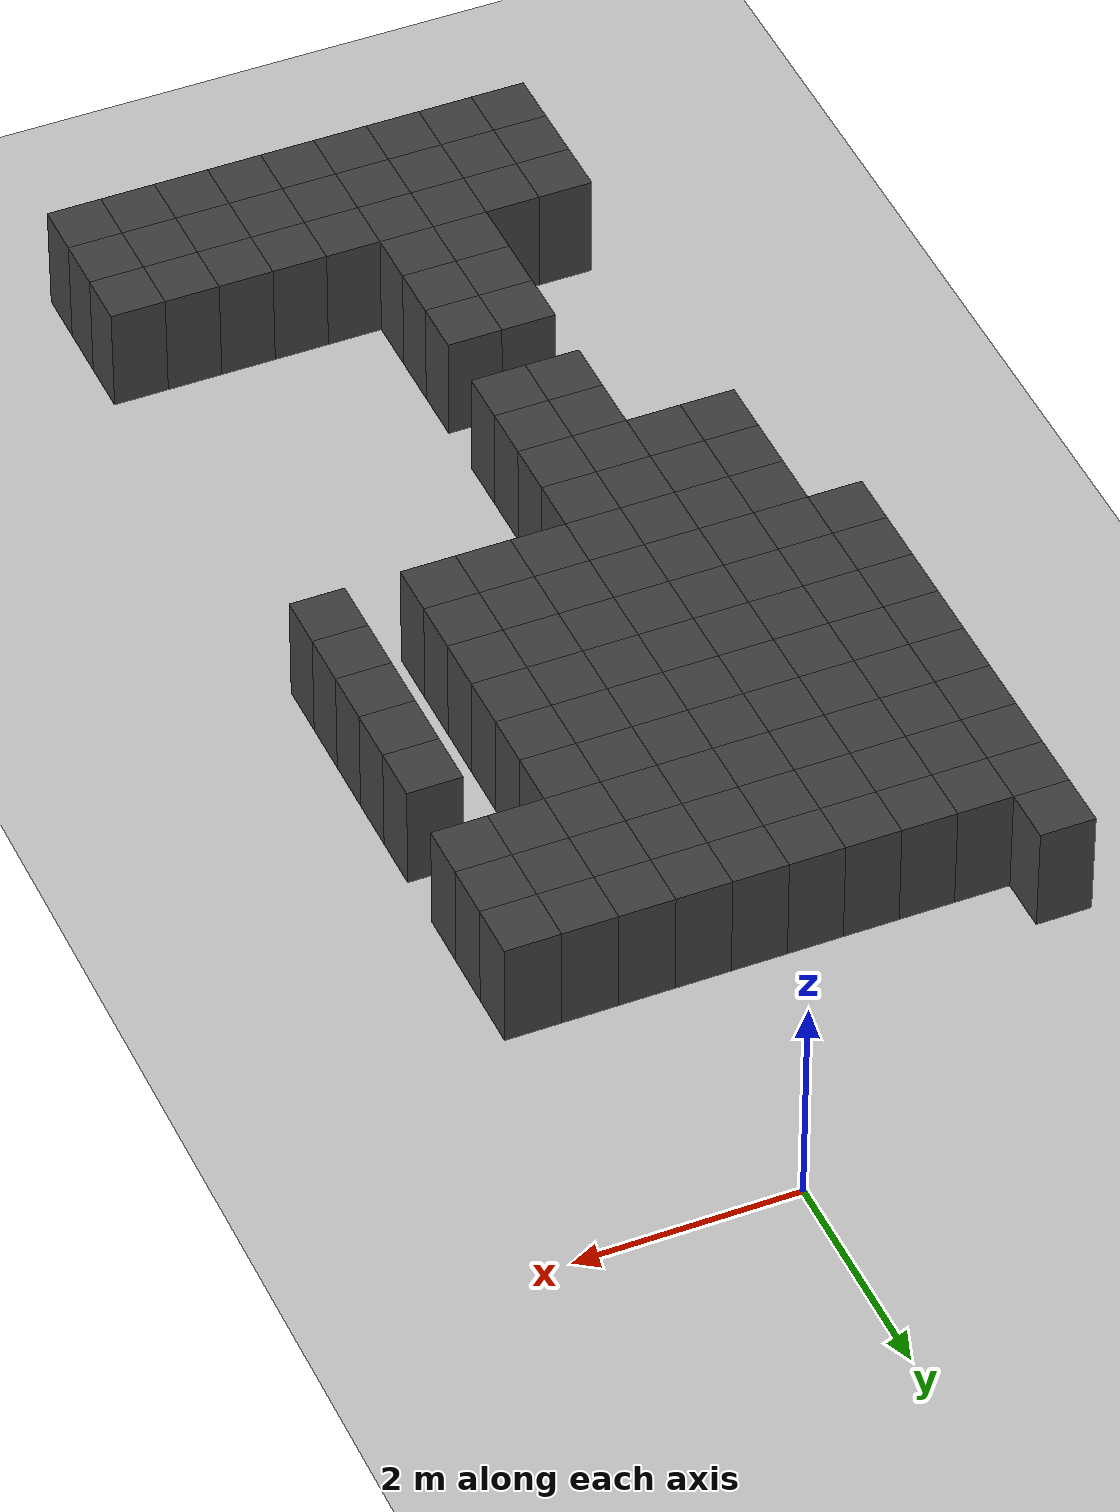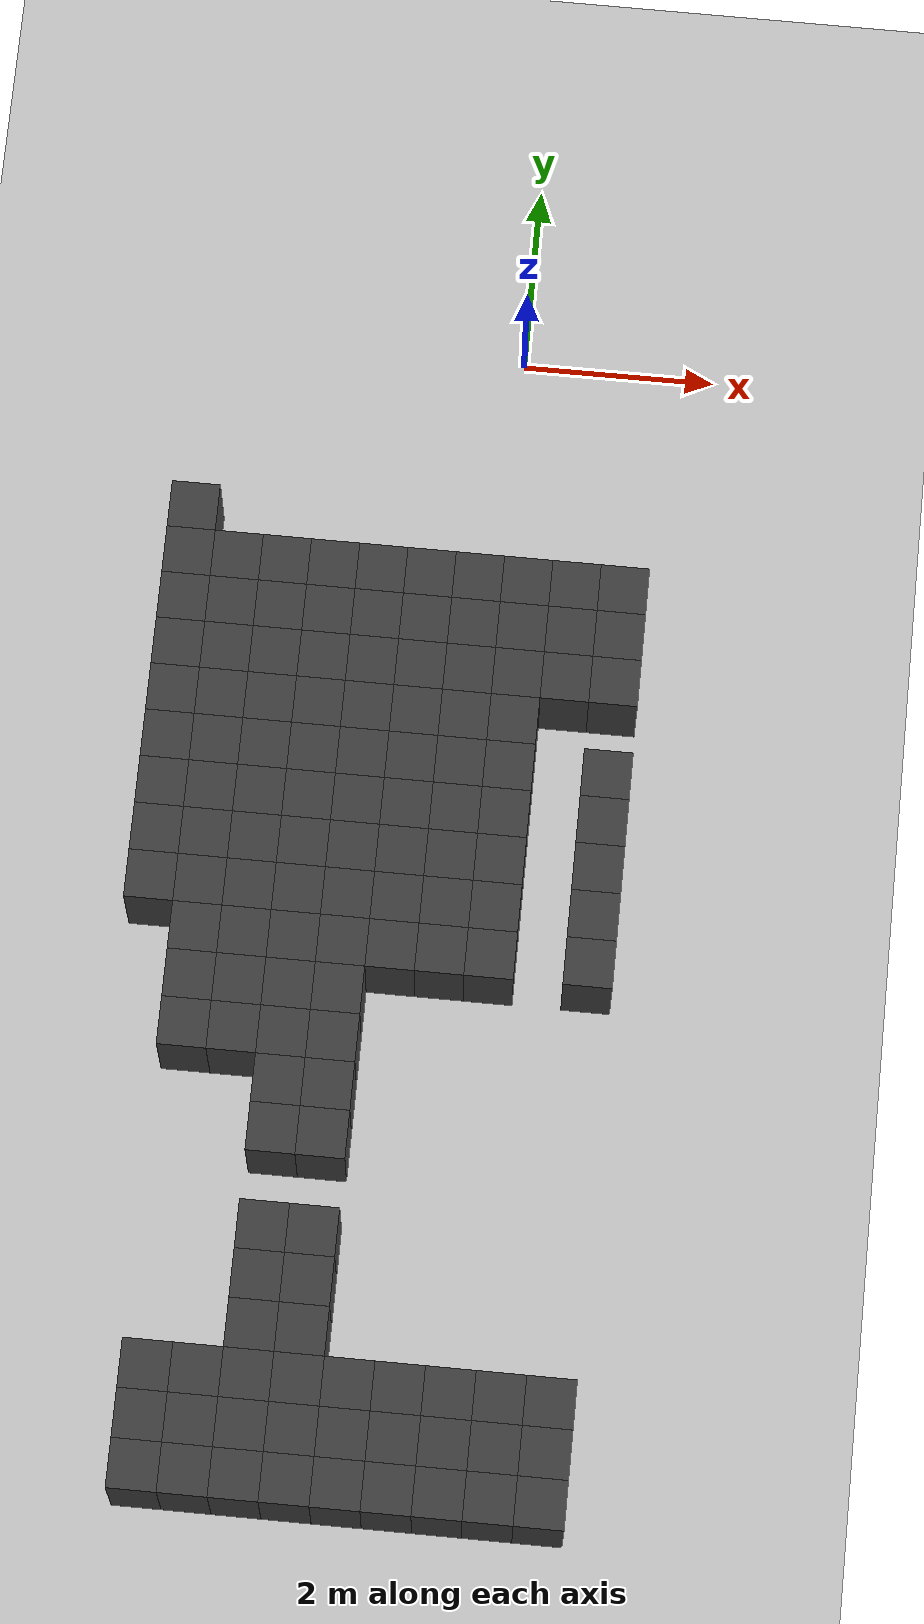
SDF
<sdf version="1.7">
 <world name="map_14494">
  <model name="ground_plane">
   <static>true</static>
   <link name="link">
    <collision name="collision">
     <geometry><plane><normal>0 0 1</normal><size>200 200</size></plane></geometry>
    </collision>
    <visual name="visual">
     <geometry><plane><normal>0 0 1</normal><size>200 200</size></plane></geometry>
     <material><ambient>0.8 0.8 0.8 1</ambient><diffuse>0.8 0.8 0.8 1</diffuse></material>
    </visual>
   </link>
  </model>
  <model name="maze_environment">
   <static>true</static>
   <link name="wall_1061">
    <pose>-3.250 -2.250 0.500 0 0 0</pose>
    <collision name="col"><geometry><box><size>0.5 0.5 1.0</size></box></geometry></collision>
    <visual name="vis">
     <geometry><box><size>0.5 0.5 1.0</size></box></geometry>
     <material><ambient>0.15 0.15 0.15 1</ambient><diffuse>0.25 0.25 0.25 1</diffuse></material>
    </visual>
   </link>
   <link name="wall_1089">
    <pose>-3.250 -2.750 0.500 0 0 0</pose>
    <collision name="col"><geometry><box><size>0.5 0.5 1.0</size></box></geometry></collision>
    <visual name="vis">
     <geometry><box><size>0.5 0.5 1.0</size></box></geometry>
     <material><ambient>0.15 0.15 0.15 1</ambient><diffuse>0.25 0.25 0.25 1</diffuse></material>
    </visual>
   </link>
   <link name="wall_1090">
    <pose>-2.750 -2.750 0.500 0 0 0</pose>
    <collision name="col"><geometry><box><size>0.5 0.5 1.0</size></box></geometry></collision>
    <visual name="vis">
     <geometry><box><size>0.5 0.5 1.0</size></box></geometry>
     <material><ambient>0.15 0.15 0.15 1</ambient><diffuse>0.25 0.25 0.25 1</diffuse></material>
    </visual>
   </link>
   <link name="wall_1091">
    <pose>-2.250 -2.750 0.500 0 0 0</pose>
    <collision name="col"><geometry><box><size>0.5 0.5 1.0</size></box></geometry></collision>
    <visual name="vis">
     <geometry><box><size>0.5 0.5 1.0</size></box></geometry>
     <material><ambient>0.15 0.15 0.15 1</ambient><diffuse>0.25 0.25 0.25 1</diffuse></material>
    </visual>
   </link>
   <link name="wall_1092">
    <pose>-1.750 -2.750 0.500 0 0 0</pose>
    <collision name="col"><geometry><box><size>0.5 0.5 1.0</size></box></geometry></collision>
    <visual name="vis">
     <geometry><box><size>0.5 0.5 1.0</size></box></geometry>
     <material><ambient>0.15 0.15 0.15 1</ambient><diffuse>0.25 0.25 0.25 1</diffuse></material>
    </visual>
   </link>
   <link name="wall_1093">
    <pose>-1.250 -2.750 0.500 0 0 0</pose>
    <collision name="col"><geometry><box><size>0.5 0.5 1.0</size></box></geometry></collision>
    <visual name="vis">
     <geometry><box><size>0.5 0.5 1.0</size></box></geometry>
     <material><ambient>0.15 0.15 0.15 1</ambient><diffuse>0.25 0.25 0.25 1</diffuse></material>
    </visual>
   </link>
   <link name="wall_1094">
    <pose>-0.750 -2.750 0.500 0 0 0</pose>
    <collision name="col"><geometry><box><size>0.5 0.5 1.0</size></box></geometry></collision>
    <visual name="vis">
     <geometry><box><size>0.5 0.5 1.0</size></box></geometry>
     <material><ambient>0.15 0.15 0.15 1</ambient><diffuse>0.25 0.25 0.25 1</diffuse></material>
    </visual>
   </link>
   <link name="wall_1095">
    <pose>-0.250 -2.750 0.500 0 0 0</pose>
    <collision name="col"><geometry><box><size>0.5 0.5 1.0</size></box></geometry></collision>
    <visual name="vis">
     <geometry><box><size>0.5 0.5 1.0</size></box></geometry>
     <material><ambient>0.15 0.15 0.15 1</ambient><diffuse>0.25 0.25 0.25 1</diffuse></material>
    </visual>
   </link>
   <link name="wall_1096">
    <pose>0.250 -2.750 0.500 0 0 0</pose>
    <collision name="col"><geometry><box><size>0.5 0.5 1.0</size></box></geometry></collision>
    <visual name="vis">
     <geometry><box><size>0.5 0.5 1.0</size></box></geometry>
     <material><ambient>0.15 0.15 0.15 1</ambient><diffuse>0.25 0.25 0.25 1</diffuse></material>
    </visual>
   </link>
   <link name="wall_1097">
    <pose>0.750 -2.750 0.500 0 0 0</pose>
    <collision name="col"><geometry><box><size>0.5 0.5 1.0</size></box></geometry></collision>
    <visual name="vis">
     <geometry><box><size>0.5 0.5 1.0</size></box></geometry>
     <material><ambient>0.15 0.15 0.15 1</ambient><diffuse>0.25 0.25 0.25 1</diffuse></material>
    </visual>
   </link>
   <link name="wall_1098">
    <pose>1.250 -2.750 0.500 0 0 0</pose>
    <collision name="col"><geometry><box><size>0.5 0.5 1.0</size></box></geometry></collision>
    <visual name="vis">
     <geometry><box><size>0.5 0.5 1.0</size></box></geometry>
     <material><ambient>0.15 0.15 0.15 1</ambient><diffuse>0.25 0.25 0.25 1</diffuse></material>
    </visual>
   </link>
   <link name="wall_1115">
    <pose>-3.250 -3.250 0.500 0 0 0</pose>
    <collision name="col"><geometry><box><size>0.5 0.5 1.0</size></box></geometry></collision>
    <visual name="vis">
     <geometry><box><size>0.5 0.5 1.0</size></box></geometry>
     <material><ambient>0.15 0.15 0.15 1</ambient><diffuse>0.25 0.25 0.25 1</diffuse></material>
    </visual>
   </link>
   <link name="wall_1116">
    <pose>-2.750 -3.250 0.500 0 0 0</pose>
    <collision name="col"><geometry><box><size>0.5 0.5 1.0</size></box></geometry></collision>
    <visual name="vis">
     <geometry><box><size>0.5 0.5 1.0</size></box></geometry>
     <material><ambient>0.15 0.15 0.15 1</ambient><diffuse>0.25 0.25 0.25 1</diffuse></material>
    </visual>
   </link>
   <link name="wall_1117">
    <pose>-2.250 -3.250 0.500 0 0 0</pose>
    <collision name="col"><geometry><box><size>0.5 0.5 1.0</size></box></geometry></collision>
    <visual name="vis">
     <geometry><box><size>0.5 0.5 1.0</size></box></geometry>
     <material><ambient>0.15 0.15 0.15 1</ambient><diffuse>0.25 0.25 0.25 1</diffuse></material>
    </visual>
   </link>
   <link name="wall_1118">
    <pose>-1.750 -3.250 0.500 0 0 0</pose>
    <collision name="col"><geometry><box><size>0.5 0.5 1.0</size></box></geometry></collision>
    <visual name="vis">
     <geometry><box><size>0.5 0.5 1.0</size></box></geometry>
     <material><ambient>0.15 0.15 0.15 1</ambient><diffuse>0.25 0.25 0.25 1</diffuse></material>
    </visual>
   </link>
   <link name="wall_1119">
    <pose>-1.250 -3.250 0.500 0 0 0</pose>
    <collision name="col"><geometry><box><size>0.5 0.5 1.0</size></box></geometry></collision>
    <visual name="vis">
     <geometry><box><size>0.5 0.5 1.0</size></box></geometry>
     <material><ambient>0.15 0.15 0.15 1</ambient><diffuse>0.25 0.25 0.25 1</diffuse></material>
    </visual>
   </link>
   <link name="wall_1120">
    <pose>-0.750 -3.250 0.500 0 0 0</pose>
    <collision name="col"><geometry><box><size>0.5 0.5 1.0</size></box></geometry></collision>
    <visual name="vis">
     <geometry><box><size>0.5 0.5 1.0</size></box></geometry>
     <material><ambient>0.15 0.15 0.15 1</ambient><diffuse>0.25 0.25 0.25 1</diffuse></material>
    </visual>
   </link>
   <link name="wall_1121">
    <pose>-0.250 -3.250 0.500 0 0 0</pose>
    <collision name="col"><geometry><box><size>0.5 0.5 1.0</size></box></geometry></collision>
    <visual name="vis">
     <geometry><box><size>0.5 0.5 1.0</size></box></geometry>
     <material><ambient>0.15 0.15 0.15 1</ambient><diffuse>0.25 0.25 0.25 1</diffuse></material>
    </visual>
   </link>
   <link name="wall_1122">
    <pose>0.250 -3.250 0.500 0 0 0</pose>
    <collision name="col"><geometry><box><size>0.5 0.5 1.0</size></box></geometry></collision>
    <visual name="vis">
     <geometry><box><size>0.5 0.5 1.0</size></box></geometry>
     <material><ambient>0.15 0.15 0.15 1</ambient><diffuse>0.25 0.25 0.25 1</diffuse></material>
    </visual>
   </link>
   <link name="wall_1123">
    <pose>0.750 -3.250 0.500 0 0 0</pose>
    <collision name="col"><geometry><box><size>0.5 0.5 1.0</size></box></geometry></collision>
    <visual name="vis">
     <geometry><box><size>0.5 0.5 1.0</size></box></geometry>
     <material><ambient>0.15 0.15 0.15 1</ambient><diffuse>0.25 0.25 0.25 1</diffuse></material>
    </visual>
   </link>
   <link name="wall_1124">
    <pose>1.250 -3.250 0.500 0 0 0</pose>
    <collision name="col"><geometry><box><size>0.5 0.5 1.0</size></box></geometry></collision>
    <visual name="vis">
     <geometry><box><size>0.5 0.5 1.0</size></box></geometry>
     <material><ambient>0.15 0.15 0.15 1</ambient><diffuse>0.25 0.25 0.25 1</diffuse></material>
    </visual>
   </link>
   <link name="wall_1142">
    <pose>-3.250 -3.750 0.500 0 0 0</pose>
    <collision name="col"><geometry><box><size>0.5 0.5 1.0</size></box></geometry></collision>
    <visual name="vis">
     <geometry><box><size>0.5 0.5 1.0</size></box></geometry>
     <material><ambient>0.15 0.15 0.15 1</ambient><diffuse>0.25 0.25 0.25 1</diffuse></material>
    </visual>
   </link>
   <link name="wall_1143">
    <pose>-2.750 -3.750 0.500 0 0 0</pose>
    <collision name="col"><geometry><box><size>0.5 0.5 1.0</size></box></geometry></collision>
    <visual name="vis">
     <geometry><box><size>0.5 0.5 1.0</size></box></geometry>
     <material><ambient>0.15 0.15 0.15 1</ambient><diffuse>0.25 0.25 0.25 1</diffuse></material>
    </visual>
   </link>
   <link name="wall_1144">
    <pose>-2.250 -3.750 0.500 0 0 0</pose>
    <collision name="col"><geometry><box><size>0.5 0.5 1.0</size></box></geometry></collision>
    <visual name="vis">
     <geometry><box><size>0.5 0.5 1.0</size></box></geometry>
     <material><ambient>0.15 0.15 0.15 1</ambient><diffuse>0.25 0.25 0.25 1</diffuse></material>
    </visual>
   </link>
   <link name="wall_1145">
    <pose>-1.750 -3.750 0.500 0 0 0</pose>
    <collision name="col"><geometry><box><size>0.5 0.5 1.0</size></box></geometry></collision>
    <visual name="vis">
     <geometry><box><size>0.5 0.5 1.0</size></box></geometry>
     <material><ambient>0.15 0.15 0.15 1</ambient><diffuse>0.25 0.25 0.25 1</diffuse></material>
    </visual>
   </link>
   <link name="wall_1146">
    <pose>-1.250 -3.750 0.500 0 0 0</pose>
    <collision name="col"><geometry><box><size>0.5 0.5 1.0</size></box></geometry></collision>
    <visual name="vis">
     <geometry><box><size>0.5 0.5 1.0</size></box></geometry>
     <material><ambient>0.15 0.15 0.15 1</ambient><diffuse>0.25 0.25 0.25 1</diffuse></material>
    </visual>
   </link>
   <link name="wall_1147">
    <pose>-0.750 -3.750 0.500 0 0 0</pose>
    <collision name="col"><geometry><box><size>0.5 0.5 1.0</size></box></geometry></collision>
    <visual name="vis">
     <geometry><box><size>0.5 0.5 1.0</size></box></geometry>
     <material><ambient>0.15 0.15 0.15 1</ambient><diffuse>0.25 0.25 0.25 1</diffuse></material>
    </visual>
   </link>
   <link name="wall_1148">
    <pose>-0.250 -3.750 0.500 0 0 0</pose>
    <collision name="col"><geometry><box><size>0.5 0.5 1.0</size></box></geometry></collision>
    <visual name="vis">
     <geometry><box><size>0.5 0.5 1.0</size></box></geometry>
     <material><ambient>0.15 0.15 0.15 1</ambient><diffuse>0.25 0.25 0.25 1</diffuse></material>
    </visual>
   </link>
   <link name="wall_1149">
    <pose>0.250 -3.750 0.500 0 0 0</pose>
    <collision name="col"><geometry><box><size>0.5 0.5 1.0</size></box></geometry></collision>
    <visual name="vis">
     <geometry><box><size>0.5 0.5 1.0</size></box></geometry>
     <material><ambient>0.15 0.15 0.15 1</ambient><diffuse>0.25 0.25 0.25 1</diffuse></material>
    </visual>
   </link>
   <link name="wall_1150">
    <pose>0.750 -3.750 0.500 0 0 0</pose>
    <collision name="col"><geometry><box><size>0.5 0.5 1.0</size></box></geometry></collision>
    <visual name="vis">
     <geometry><box><size>0.5 0.5 1.0</size></box></geometry>
     <material><ambient>0.15 0.15 0.15 1</ambient><diffuse>0.25 0.25 0.25 1</diffuse></material>
    </visual>
   </link>
   <link name="wall_1151">
    <pose>1.250 -3.750 0.500 0 0 0</pose>
    <collision name="col"><geometry><box><size>0.5 0.5 1.0</size></box></geometry></collision>
    <visual name="vis">
     <geometry><box><size>0.5 0.5 1.0</size></box></geometry>
     <material><ambient>0.15 0.15 0.15 1</ambient><diffuse>0.25 0.25 0.25 1</diffuse></material>
    </visual>
   </link>
   <link name="wall_1169">
    <pose>-3.250 -4.250 0.500 0 0 0</pose>
    <collision name="col"><geometry><box><size>0.5 0.5 1.0</size></box></geometry></collision>
    <visual name="vis">
     <geometry><box><size>0.5 0.5 1.0</size></box></geometry>
     <material><ambient>0.15 0.15 0.15 1</ambient><diffuse>0.25 0.25 0.25 1</diffuse></material>
    </visual>
   </link>
   <link name="wall_1170">
    <pose>-2.750 -4.250 0.500 0 0 0</pose>
    <collision name="col"><geometry><box><size>0.5 0.5 1.0</size></box></geometry></collision>
    <visual name="vis">
     <geometry><box><size>0.5 0.5 1.0</size></box></geometry>
     <material><ambient>0.15 0.15 0.15 1</ambient><diffuse>0.25 0.25 0.25 1</diffuse></material>
    </visual>
   </link>
   <link name="wall_1171">
    <pose>-2.250 -4.250 0.500 0 0 0</pose>
    <collision name="col"><geometry><box><size>0.5 0.5 1.0</size></box></geometry></collision>
    <visual name="vis">
     <geometry><box><size>0.5 0.5 1.0</size></box></geometry>
     <material><ambient>0.15 0.15 0.15 1</ambient><diffuse>0.25 0.25 0.25 1</diffuse></material>
    </visual>
   </link>
   <link name="wall_1172">
    <pose>-1.750 -4.250 0.500 0 0 0</pose>
    <collision name="col"><geometry><box><size>0.5 0.5 1.0</size></box></geometry></collision>
    <visual name="vis">
     <geometry><box><size>0.5 0.5 1.0</size></box></geometry>
     <material><ambient>0.15 0.15 0.15 1</ambient><diffuse>0.25 0.25 0.25 1</diffuse></material>
    </visual>
   </link>
   <link name="wall_1173">
    <pose>-1.250 -4.250 0.500 0 0 0</pose>
    <collision name="col"><geometry><box><size>0.5 0.5 1.0</size></box></geometry></collision>
    <visual name="vis">
     <geometry><box><size>0.5 0.5 1.0</size></box></geometry>
     <material><ambient>0.15 0.15 0.15 1</ambient><diffuse>0.25 0.25 0.25 1</diffuse></material>
    </visual>
   </link>
   <link name="wall_1174">
    <pose>-0.750 -4.250 0.500 0 0 0</pose>
    <collision name="col"><geometry><box><size>0.5 0.5 1.0</size></box></geometry></collision>
    <visual name="vis">
     <geometry><box><size>0.5 0.5 1.0</size></box></geometry>
     <material><ambient>0.15 0.15 0.15 1</ambient><diffuse>0.25 0.25 0.25 1</diffuse></material>
    </visual>
   </link>
   <link name="wall_1175">
    <pose>-0.250 -4.250 0.500 0 0 0</pose>
    <collision name="col"><geometry><box><size>0.5 0.5 1.0</size></box></geometry></collision>
    <visual name="vis">
     <geometry><box><size>0.5 0.5 1.0</size></box></geometry>
     <material><ambient>0.15 0.15 0.15 1</ambient><diffuse>0.25 0.25 0.25 1</diffuse></material>
    </visual>
   </link>
   <link name="wall_1176">
    <pose>0.250 -4.250 0.500 0 0 0</pose>
    <collision name="col"><geometry><box><size>0.5 0.5 1.0</size></box></geometry></collision>
    <visual name="vis">
     <geometry><box><size>0.5 0.5 1.0</size></box></geometry>
     <material><ambient>0.15 0.15 0.15 1</ambient><diffuse>0.25 0.25 0.25 1</diffuse></material>
    </visual>
   </link>
   <link name="wall_1200">
    <pose>-3.250 -4.750 0.500 0 0 0</pose>
    <collision name="col"><geometry><box><size>0.5 0.5 1.0</size></box></geometry></collision>
    <visual name="vis">
     <geometry><box><size>0.5 0.5 1.0</size></box></geometry>
     <material><ambient>0.15 0.15 0.15 1</ambient><diffuse>0.25 0.25 0.25 1</diffuse></material>
    </visual>
   </link>
   <link name="wall_1201">
    <pose>-2.750 -4.750 0.500 0 0 0</pose>
    <collision name="col"><geometry><box><size>0.5 0.5 1.0</size></box></geometry></collision>
    <visual name="vis">
     <geometry><box><size>0.5 0.5 1.0</size></box></geometry>
     <material><ambient>0.15 0.15 0.15 1</ambient><diffuse>0.25 0.25 0.25 1</diffuse></material>
    </visual>
   </link>
   <link name="wall_1202">
    <pose>-2.250 -4.750 0.500 0 0 0</pose>
    <collision name="col"><geometry><box><size>0.5 0.5 1.0</size></box></geometry></collision>
    <visual name="vis">
     <geometry><box><size>0.5 0.5 1.0</size></box></geometry>
     <material><ambient>0.15 0.15 0.15 1</ambient><diffuse>0.25 0.25 0.25 1</diffuse></material>
    </visual>
   </link>
   <link name="wall_1203">
    <pose>-1.750 -4.750 0.500 0 0 0</pose>
    <collision name="col"><geometry><box><size>0.5 0.5 1.0</size></box></geometry></collision>
    <visual name="vis">
     <geometry><box><size>0.5 0.5 1.0</size></box></geometry>
     <material><ambient>0.15 0.15 0.15 1</ambient><diffuse>0.25 0.25 0.25 1</diffuse></material>
    </visual>
   </link>
   <link name="wall_1204">
    <pose>-1.250 -4.750 0.500 0 0 0</pose>
    <collision name="col"><geometry><box><size>0.5 0.5 1.0</size></box></geometry></collision>
    <visual name="vis">
     <geometry><box><size>0.5 0.5 1.0</size></box></geometry>
     <material><ambient>0.15 0.15 0.15 1</ambient><diffuse>0.25 0.25 0.25 1</diffuse></material>
    </visual>
   </link>
   <link name="wall_1205">
    <pose>-0.750 -4.750 0.500 0 0 0</pose>
    <collision name="col"><geometry><box><size>0.5 0.5 1.0</size></box></geometry></collision>
    <visual name="vis">
     <geometry><box><size>0.5 0.5 1.0</size></box></geometry>
     <material><ambient>0.15 0.15 0.15 1</ambient><diffuse>0.25 0.25 0.25 1</diffuse></material>
    </visual>
   </link>
   <link name="wall_1206">
    <pose>-0.250 -4.750 0.500 0 0 0</pose>
    <collision name="col"><geometry><box><size>0.5 0.5 1.0</size></box></geometry></collision>
    <visual name="vis">
     <geometry><box><size>0.5 0.5 1.0</size></box></geometry>
     <material><ambient>0.15 0.15 0.15 1</ambient><diffuse>0.25 0.25 0.25 1</diffuse></material>
    </visual>
   </link>
   <link name="wall_1207">
    <pose>0.250 -4.750 0.500 0 0 0</pose>
    <collision name="col"><geometry><box><size>0.5 0.5 1.0</size></box></geometry></collision>
    <visual name="vis">
     <geometry><box><size>0.5 0.5 1.0</size></box></geometry>
     <material><ambient>0.15 0.15 0.15 1</ambient><diffuse>0.25 0.25 0.25 1</diffuse></material>
    </visual>
   </link>
   <link name="wall_1208">
    <pose>1.250 -4.750 0.500 0 0 0</pose>
    <collision name="col"><geometry><box><size>0.5 0.5 1.0</size></box></geometry></collision>
    <visual name="vis">
     <geometry><box><size>0.5 0.5 1.0</size></box></geometry>
     <material><ambient>0.15 0.15 0.15 1</ambient><diffuse>0.25 0.25 0.25 1</diffuse></material>
    </visual>
   </link>
   <link name="wall_1237">
    <pose>-3.250 -5.250 0.500 0 0 0</pose>
    <collision name="col"><geometry><box><size>0.5 0.5 1.0</size></box></geometry></collision>
    <visual name="vis">
     <geometry><box><size>0.5 0.5 1.0</size></box></geometry>
     <material><ambient>0.15 0.15 0.15 1</ambient><diffuse>0.25 0.25 0.25 1</diffuse></material>
    </visual>
   </link>
   <link name="wall_1238">
    <pose>-2.750 -5.250 0.500 0 0 0</pose>
    <collision name="col"><geometry><box><size>0.5 0.5 1.0</size></box></geometry></collision>
    <visual name="vis">
     <geometry><box><size>0.5 0.5 1.0</size></box></geometry>
     <material><ambient>0.15 0.15 0.15 1</ambient><diffuse>0.25 0.25 0.25 1</diffuse></material>
    </visual>
   </link>
   <link name="wall_1239">
    <pose>-2.250 -5.250 0.500 0 0 0</pose>
    <collision name="col"><geometry><box><size>0.5 0.5 1.0</size></box></geometry></collision>
    <visual name="vis">
     <geometry><box><size>0.5 0.5 1.0</size></box></geometry>
     <material><ambient>0.15 0.15 0.15 1</ambient><diffuse>0.25 0.25 0.25 1</diffuse></material>
    </visual>
   </link>
   <link name="wall_1240">
    <pose>-1.750 -5.250 0.500 0 0 0</pose>
    <collision name="col"><geometry><box><size>0.5 0.5 1.0</size></box></geometry></collision>
    <visual name="vis">
     <geometry><box><size>0.5 0.5 1.0</size></box></geometry>
     <material><ambient>0.15 0.15 0.15 1</ambient><diffuse>0.25 0.25 0.25 1</diffuse></material>
    </visual>
   </link>
   <link name="wall_1241">
    <pose>-1.250 -5.250 0.500 0 0 0</pose>
    <collision name="col"><geometry><box><size>0.5 0.5 1.0</size></box></geometry></collision>
    <visual name="vis">
     <geometry><box><size>0.5 0.5 1.0</size></box></geometry>
     <material><ambient>0.15 0.15 0.15 1</ambient><diffuse>0.25 0.25 0.25 1</diffuse></material>
    </visual>
   </link>
   <link name="wall_1242">
    <pose>-0.750 -5.250 0.500 0 0 0</pose>
    <collision name="col"><geometry><box><size>0.5 0.5 1.0</size></box></geometry></collision>
    <visual name="vis">
     <geometry><box><size>0.5 0.5 1.0</size></box></geometry>
     <material><ambient>0.15 0.15 0.15 1</ambient><diffuse>0.25 0.25 0.25 1</diffuse></material>
    </visual>
   </link>
   <link name="wall_1243">
    <pose>-0.250 -5.250 0.500 0 0 0</pose>
    <collision name="col"><geometry><box><size>0.5 0.5 1.0</size></box></geometry></collision>
    <visual name="vis">
     <geometry><box><size>0.5 0.5 1.0</size></box></geometry>
     <material><ambient>0.15 0.15 0.15 1</ambient><diffuse>0.25 0.25 0.25 1</diffuse></material>
    </visual>
   </link>
   <link name="wall_1244">
    <pose>0.250 -5.250 0.500 0 0 0</pose>
    <collision name="col"><geometry><box><size>0.5 0.5 1.0</size></box></geometry></collision>
    <visual name="vis">
     <geometry><box><size>0.5 0.5 1.0</size></box></geometry>
     <material><ambient>0.15 0.15 0.15 1</ambient><diffuse>0.25 0.25 0.25 1</diffuse></material>
    </visual>
   </link>
   <link name="wall_1245">
    <pose>1.250 -5.250 0.500 0 0 0</pose>
    <collision name="col"><geometry><box><size>0.5 0.5 1.0</size></box></geometry></collision>
    <visual name="vis">
     <geometry><box><size>0.5 0.5 1.0</size></box></geometry>
     <material><ambient>0.15 0.15 0.15 1</ambient><diffuse>0.25 0.25 0.25 1</diffuse></material>
    </visual>
   </link>
   <link name="wall_1279">
    <pose>-3.250 -5.750 0.500 0 0 0</pose>
    <collision name="col"><geometry><box><size>0.5 0.5 1.0</size></box></geometry></collision>
    <visual name="vis">
     <geometry><box><size>0.5 0.5 1.0</size></box></geometry>
     <material><ambient>0.15 0.15 0.15 1</ambient><diffuse>0.25 0.25 0.25 1</diffuse></material>
    </visual>
   </link>
   <link name="wall_1280">
    <pose>-2.750 -5.750 0.500 0 0 0</pose>
    <collision name="col"><geometry><box><size>0.5 0.5 1.0</size></box></geometry></collision>
    <visual name="vis">
     <geometry><box><size>0.5 0.5 1.0</size></box></geometry>
     <material><ambient>0.15 0.15 0.15 1</ambient><diffuse>0.25 0.25 0.25 1</diffuse></material>
    </visual>
   </link>
   <link name="wall_1281">
    <pose>-2.250 -5.750 0.500 0 0 0</pose>
    <collision name="col"><geometry><box><size>0.5 0.5 1.0</size></box></geometry></collision>
    <visual name="vis">
     <geometry><box><size>0.5 0.5 1.0</size></box></geometry>
     <material><ambient>0.15 0.15 0.15 1</ambient><diffuse>0.25 0.25 0.25 1</diffuse></material>
    </visual>
   </link>
   <link name="wall_1282">
    <pose>-1.750 -5.750 0.500 0 0 0</pose>
    <collision name="col"><geometry><box><size>0.5 0.5 1.0</size></box></geometry></collision>
    <visual name="vis">
     <geometry><box><size>0.5 0.5 1.0</size></box></geometry>
     <material><ambient>0.15 0.15 0.15 1</ambient><diffuse>0.25 0.25 0.25 1</diffuse></material>
    </visual>
   </link>
   <link name="wall_1283">
    <pose>-1.250 -5.750 0.500 0 0 0</pose>
    <collision name="col"><geometry><box><size>0.5 0.5 1.0</size></box></geometry></collision>
    <visual name="vis">
     <geometry><box><size>0.5 0.5 1.0</size></box></geometry>
     <material><ambient>0.15 0.15 0.15 1</ambient><diffuse>0.25 0.25 0.25 1</diffuse></material>
    </visual>
   </link>
   <link name="wall_1284">
    <pose>-0.750 -5.750 0.500 0 0 0</pose>
    <collision name="col"><geometry><box><size>0.5 0.5 1.0</size></box></geometry></collision>
    <visual name="vis">
     <geometry><box><size>0.5 0.5 1.0</size></box></geometry>
     <material><ambient>0.15 0.15 0.15 1</ambient><diffuse>0.25 0.25 0.25 1</diffuse></material>
    </visual>
   </link>
   <link name="wall_1285">
    <pose>-0.250 -5.750 0.500 0 0 0</pose>
    <collision name="col"><geometry><box><size>0.5 0.5 1.0</size></box></geometry></collision>
    <visual name="vis">
     <geometry><box><size>0.5 0.5 1.0</size></box></geometry>
     <material><ambient>0.15 0.15 0.15 1</ambient><diffuse>0.25 0.25 0.25 1</diffuse></material>
    </visual>
   </link>
   <link name="wall_1286">
    <pose>0.250 -5.750 0.500 0 0 0</pose>
    <collision name="col"><geometry><box><size>0.5 0.5 1.0</size></box></geometry></collision>
    <visual name="vis">
     <geometry><box><size>0.5 0.5 1.0</size></box></geometry>
     <material><ambient>0.15 0.15 0.15 1</ambient><diffuse>0.25 0.25 0.25 1</diffuse></material>
    </visual>
   </link>
   <link name="wall_1287">
    <pose>1.250 -5.750 0.500 0 0 0</pose>
    <collision name="col"><geometry><box><size>0.5 0.5 1.0</size></box></geometry></collision>
    <visual name="vis">
     <geometry><box><size>0.5 0.5 1.0</size></box></geometry>
     <material><ambient>0.15 0.15 0.15 1</ambient><diffuse>0.25 0.25 0.25 1</diffuse></material>
    </visual>
   </link>
   <link name="wall_1326">
    <pose>-3.250 -6.250 0.500 0 0 0</pose>
    <collision name="col"><geometry><box><size>0.5 0.5 1.0</size></box></geometry></collision>
    <visual name="vis">
     <geometry><box><size>0.5 0.5 1.0</size></box></geometry>
     <material><ambient>0.15 0.15 0.15 1</ambient><diffuse>0.25 0.25 0.25 1</diffuse></material>
    </visual>
   </link>
   <link name="wall_1327">
    <pose>-2.750 -6.250 0.500 0 0 0</pose>
    <collision name="col"><geometry><box><size>0.5 0.5 1.0</size></box></geometry></collision>
    <visual name="vis">
     <geometry><box><size>0.5 0.5 1.0</size></box></geometry>
     <material><ambient>0.15 0.15 0.15 1</ambient><diffuse>0.25 0.25 0.25 1</diffuse></material>
    </visual>
   </link>
   <link name="wall_1328">
    <pose>-2.250 -6.250 0.500 0 0 0</pose>
    <collision name="col"><geometry><box><size>0.5 0.5 1.0</size></box></geometry></collision>
    <visual name="vis">
     <geometry><box><size>0.5 0.5 1.0</size></box></geometry>
     <material><ambient>0.15 0.15 0.15 1</ambient><diffuse>0.25 0.25 0.25 1</diffuse></material>
    </visual>
   </link>
   <link name="wall_1329">
    <pose>-1.750 -6.250 0.500 0 0 0</pose>
    <collision name="col"><geometry><box><size>0.5 0.5 1.0</size></box></geometry></collision>
    <visual name="vis">
     <geometry><box><size>0.5 0.5 1.0</size></box></geometry>
     <material><ambient>0.15 0.15 0.15 1</ambient><diffuse>0.25 0.25 0.25 1</diffuse></material>
    </visual>
   </link>
   <link name="wall_1330">
    <pose>-1.250 -6.250 0.500 0 0 0</pose>
    <collision name="col"><geometry><box><size>0.5 0.5 1.0</size></box></geometry></collision>
    <visual name="vis">
     <geometry><box><size>0.5 0.5 1.0</size></box></geometry>
     <material><ambient>0.15 0.15 0.15 1</ambient><diffuse>0.25 0.25 0.25 1</diffuse></material>
    </visual>
   </link>
   <link name="wall_1331">
    <pose>-0.750 -6.250 0.500 0 0 0</pose>
    <collision name="col"><geometry><box><size>0.5 0.5 1.0</size></box></geometry></collision>
    <visual name="vis">
     <geometry><box><size>0.5 0.5 1.0</size></box></geometry>
     <material><ambient>0.15 0.15 0.15 1</ambient><diffuse>0.25 0.25 0.25 1</diffuse></material>
    </visual>
   </link>
   <link name="wall_1332">
    <pose>-0.250 -6.250 0.500 0 0 0</pose>
    <collision name="col"><geometry><box><size>0.5 0.5 1.0</size></box></geometry></collision>
    <visual name="vis">
     <geometry><box><size>0.5 0.5 1.0</size></box></geometry>
     <material><ambient>0.15 0.15 0.15 1</ambient><diffuse>0.25 0.25 0.25 1</diffuse></material>
    </visual>
   </link>
   <link name="wall_1333">
    <pose>0.250 -6.250 0.500 0 0 0</pose>
    <collision name="col"><geometry><box><size>0.5 0.5 1.0</size></box></geometry></collision>
    <visual name="vis">
     <geometry><box><size>0.5 0.5 1.0</size></box></geometry>
     <material><ambient>0.15 0.15 0.15 1</ambient><diffuse>0.25 0.25 0.25 1</diffuse></material>
    </visual>
   </link>
   <link name="wall_1334">
    <pose>1.250 -6.250 0.500 0 0 0</pose>
    <collision name="col"><geometry><box><size>0.5 0.5 1.0</size></box></geometry></collision>
    <visual name="vis">
     <geometry><box><size>0.5 0.5 1.0</size></box></geometry>
     <material><ambient>0.15 0.15 0.15 1</ambient><diffuse>0.25 0.25 0.25 1</diffuse></material>
    </visual>
   </link>
   <link name="wall_1374">
    <pose>-2.750 -6.750 0.500 0 0 0</pose>
    <collision name="col"><geometry><box><size>0.5 0.5 1.0</size></box></geometry></collision>
    <visual name="vis">
     <geometry><box><size>0.5 0.5 1.0</size></box></geometry>
     <material><ambient>0.15 0.15 0.15 1</ambient><diffuse>0.25 0.25 0.25 1</diffuse></material>
    </visual>
   </link>
   <link name="wall_1375">
    <pose>-2.250 -6.750 0.500 0 0 0</pose>
    <collision name="col"><geometry><box><size>0.5 0.5 1.0</size></box></geometry></collision>
    <visual name="vis">
     <geometry><box><size>0.5 0.5 1.0</size></box></geometry>
     <material><ambient>0.15 0.15 0.15 1</ambient><diffuse>0.25 0.25 0.25 1</diffuse></material>
    </visual>
   </link>
   <link name="wall_1376">
    <pose>-1.750 -6.750 0.500 0 0 0</pose>
    <collision name="col"><geometry><box><size>0.5 0.5 1.0</size></box></geometry></collision>
    <visual name="vis">
     <geometry><box><size>0.5 0.5 1.0</size></box></geometry>
     <material><ambient>0.15 0.15 0.15 1</ambient><diffuse>0.25 0.25 0.25 1</diffuse></material>
    </visual>
   </link>
   <link name="wall_1377">
    <pose>-1.250 -6.750 0.500 0 0 0</pose>
    <collision name="col"><geometry><box><size>0.5 0.5 1.0</size></box></geometry></collision>
    <visual name="vis">
     <geometry><box><size>0.5 0.5 1.0</size></box></geometry>
     <material><ambient>0.15 0.15 0.15 1</ambient><diffuse>0.25 0.25 0.25 1</diffuse></material>
    </visual>
   </link>
   <link name="wall_1378">
    <pose>-0.750 -6.750 0.500 0 0 0</pose>
    <collision name="col"><geometry><box><size>0.5 0.5 1.0</size></box></geometry></collision>
    <visual name="vis">
     <geometry><box><size>0.5 0.5 1.0</size></box></geometry>
     <material><ambient>0.15 0.15 0.15 1</ambient><diffuse>0.25 0.25 0.25 1</diffuse></material>
    </visual>
   </link>
   <link name="wall_1379">
    <pose>-0.250 -6.750 0.500 0 0 0</pose>
    <collision name="col"><geometry><box><size>0.5 0.5 1.0</size></box></geometry></collision>
    <visual name="vis">
     <geometry><box><size>0.5 0.5 1.0</size></box></geometry>
     <material><ambient>0.15 0.15 0.15 1</ambient><diffuse>0.25 0.25 0.25 1</diffuse></material>
    </visual>
   </link>
   <link name="wall_1380">
    <pose>0.250 -6.750 0.500 0 0 0</pose>
    <collision name="col"><geometry><box><size>0.5 0.5 1.0</size></box></geometry></collision>
    <visual name="vis">
     <geometry><box><size>0.5 0.5 1.0</size></box></geometry>
     <material><ambient>0.15 0.15 0.15 1</ambient><diffuse>0.25 0.25 0.25 1</diffuse></material>
    </visual>
   </link>
   <link name="wall_1381">
    <pose>1.250 -6.750 0.500 0 0 0</pose>
    <collision name="col"><geometry><box><size>0.5 0.5 1.0</size></box></geometry></collision>
    <visual name="vis">
     <geometry><box><size>0.5 0.5 1.0</size></box></geometry>
     <material><ambient>0.15 0.15 0.15 1</ambient><diffuse>0.25 0.25 0.25 1</diffuse></material>
    </visual>
   </link>
   <link name="wall_1421">
    <pose>-2.750 -7.250 0.500 0 0 0</pose>
    <collision name="col"><geometry><box><size>0.5 0.5 1.0</size></box></geometry></collision>
    <visual name="vis">
     <geometry><box><size>0.5 0.5 1.0</size></box></geometry>
     <material><ambient>0.15 0.15 0.15 1</ambient><diffuse>0.25 0.25 0.25 1</diffuse></material>
    </visual>
   </link>
   <link name="wall_1422">
    <pose>-2.250 -7.250 0.500 0 0 0</pose>
    <collision name="col"><geometry><box><size>0.5 0.5 1.0</size></box></geometry></collision>
    <visual name="vis">
     <geometry><box><size>0.5 0.5 1.0</size></box></geometry>
     <material><ambient>0.15 0.15 0.15 1</ambient><diffuse>0.25 0.25 0.25 1</diffuse></material>
    </visual>
   </link>
   <link name="wall_1423">
    <pose>-1.750 -7.250 0.500 0 0 0</pose>
    <collision name="col"><geometry><box><size>0.5 0.5 1.0</size></box></geometry></collision>
    <visual name="vis">
     <geometry><box><size>0.5 0.5 1.0</size></box></geometry>
     <material><ambient>0.15 0.15 0.15 1</ambient><diffuse>0.25 0.25 0.25 1</diffuse></material>
    </visual>
   </link>
   <link name="wall_1424">
    <pose>-1.250 -7.250 0.500 0 0 0</pose>
    <collision name="col"><geometry><box><size>0.5 0.5 1.0</size></box></geometry></collision>
    <visual name="vis">
     <geometry><box><size>0.5 0.5 1.0</size></box></geometry>
     <material><ambient>0.15 0.15 0.15 1</ambient><diffuse>0.25 0.25 0.25 1</diffuse></material>
    </visual>
   </link>
   <link name="wall_1462">
    <pose>-2.750 -7.750 0.500 0 0 0</pose>
    <collision name="col"><geometry><box><size>0.5 0.5 1.0</size></box></geometry></collision>
    <visual name="vis">
     <geometry><box><size>0.5 0.5 1.0</size></box></geometry>
     <material><ambient>0.15 0.15 0.15 1</ambient><diffuse>0.25 0.25 0.25 1</diffuse></material>
    </visual>
   </link>
   <link name="wall_1463">
    <pose>-2.250 -7.750 0.500 0 0 0</pose>
    <collision name="col"><geometry><box><size>0.5 0.5 1.0</size></box></geometry></collision>
    <visual name="vis">
     <geometry><box><size>0.5 0.5 1.0</size></box></geometry>
     <material><ambient>0.15 0.15 0.15 1</ambient><diffuse>0.25 0.25 0.25 1</diffuse></material>
    </visual>
   </link>
   <link name="wall_1464">
    <pose>-1.750 -7.750 0.500 0 0 0</pose>
    <collision name="col"><geometry><box><size>0.5 0.5 1.0</size></box></geometry></collision>
    <visual name="vis">
     <geometry><box><size>0.5 0.5 1.0</size></box></geometry>
     <material><ambient>0.15 0.15 0.15 1</ambient><diffuse>0.25 0.25 0.25 1</diffuse></material>
    </visual>
   </link>
   <link name="wall_1465">
    <pose>-1.250 -7.750 0.500 0 0 0</pose>
    <collision name="col"><geometry><box><size>0.5 0.5 1.0</size></box></geometry></collision>
    <visual name="vis">
     <geometry><box><size>0.5 0.5 1.0</size></box></geometry>
     <material><ambient>0.15 0.15 0.15 1</ambient><diffuse>0.25 0.25 0.25 1</diffuse></material>
    </visual>
   </link>
   <link name="wall_1495">
    <pose>-1.750 -8.250 0.500 0 0 0</pose>
    <collision name="col"><geometry><box><size>0.5 0.5 1.0</size></box></geometry></collision>
    <visual name="vis">
     <geometry><box><size>0.5 0.5 1.0</size></box></geometry>
     <material><ambient>0.15 0.15 0.15 1</ambient><diffuse>0.25 0.25 0.25 1</diffuse></material>
    </visual>
   </link>
   <link name="wall_1496">
    <pose>-1.250 -8.250 0.500 0 0 0</pose>
    <collision name="col"><geometry><box><size>0.5 0.5 1.0</size></box></geometry></collision>
    <visual name="vis">
     <geometry><box><size>0.5 0.5 1.0</size></box></geometry>
     <material><ambient>0.15 0.15 0.15 1</ambient><diffuse>0.25 0.25 0.25 1</diffuse></material>
    </visual>
   </link>
   <link name="wall_1526">
    <pose>-1.750 -8.750 0.500 0 0 0</pose>
    <collision name="col"><geometry><box><size>0.5 0.5 1.0</size></box></geometry></collision>
    <visual name="vis">
     <geometry><box><size>0.5 0.5 1.0</size></box></geometry>
     <material><ambient>0.15 0.15 0.15 1</ambient><diffuse>0.25 0.25 0.25 1</diffuse></material>
    </visual>
   </link>
   <link name="wall_1527">
    <pose>-1.250 -8.750 0.500 0 0 0</pose>
    <collision name="col"><geometry><box><size>0.5 0.5 1.0</size></box></geometry></collision>
    <visual name="vis">
     <geometry><box><size>0.5 0.5 1.0</size></box></geometry>
     <material><ambient>0.15 0.15 0.15 1</ambient><diffuse>0.25 0.25 0.25 1</diffuse></material>
    </visual>
   </link>
   <link name="wall_1581">
    <pose>-1.750 -9.750 0.500 0 0 0</pose>
    <collision name="col"><geometry><box><size>0.5 0.5 1.0</size></box></geometry></collision>
    <visual name="vis">
     <geometry><box><size>0.5 0.5 1.0</size></box></geometry>
     <material><ambient>0.15 0.15 0.15 1</ambient><diffuse>0.25 0.25 0.25 1</diffuse></material>
    </visual>
   </link>
   <link name="wall_1582">
    <pose>-1.250 -9.750 0.500 0 0 0</pose>
    <collision name="col"><geometry><box><size>0.5 0.5 1.0</size></box></geometry></collision>
    <visual name="vis">
     <geometry><box><size>0.5 0.5 1.0</size></box></geometry>
     <material><ambient>0.15 0.15 0.15 1</ambient><diffuse>0.25 0.25 0.25 1</diffuse></material>
    </visual>
   </link>
   <link name="wall_1612">
    <pose>-1.750 -10.250 0.500 0 0 0</pose>
    <collision name="col"><geometry><box><size>0.5 0.5 1.0</size></box></geometry></collision>
    <visual name="vis">
     <geometry><box><size>0.5 0.5 1.0</size></box></geometry>
     <material><ambient>0.15 0.15 0.15 1</ambient><diffuse>0.25 0.25 0.25 1</diffuse></material>
    </visual>
   </link>
   <link name="wall_1613">
    <pose>-1.250 -10.250 0.500 0 0 0</pose>
    <collision name="col"><geometry><box><size>0.5 0.5 1.0</size></box></geometry></collision>
    <visual name="vis">
     <geometry><box><size>0.5 0.5 1.0</size></box></geometry>
     <material><ambient>0.15 0.15 0.15 1</ambient><diffuse>0.25 0.25 0.25 1</diffuse></material>
    </visual>
   </link>
   <link name="wall_1643">
    <pose>-1.750 -10.750 0.500 0 0 0</pose>
    <collision name="col"><geometry><box><size>0.5 0.5 1.0</size></box></geometry></collision>
    <visual name="vis">
     <geometry><box><size>0.5 0.5 1.0</size></box></geometry>
     <material><ambient>0.15 0.15 0.15 1</ambient><diffuse>0.25 0.25 0.25 1</diffuse></material>
    </visual>
   </link>
   <link name="wall_1644">
    <pose>-1.250 -10.750 0.500 0 0 0</pose>
    <collision name="col"><geometry><box><size>0.5 0.5 1.0</size></box></geometry></collision>
    <visual name="vis">
     <geometry><box><size>0.5 0.5 1.0</size></box></geometry>
     <material><ambient>0.15 0.15 0.15 1</ambient><diffuse>0.25 0.25 0.25 1</diffuse></material>
    </visual>
   </link>
   <link name="wall_1673">
    <pose>-2.750 -11.250 0.500 0 0 0</pose>
    <collision name="col"><geometry><box><size>0.5 0.5 1.0</size></box></geometry></collision>
    <visual name="vis">
     <geometry><box><size>0.5 0.5 1.0</size></box></geometry>
     <material><ambient>0.15 0.15 0.15 1</ambient><diffuse>0.25 0.25 0.25 1</diffuse></material>
    </visual>
   </link>
   <link name="wall_1674">
    <pose>-2.250 -11.250 0.500 0 0 0</pose>
    <collision name="col"><geometry><box><size>0.5 0.5 1.0</size></box></geometry></collision>
    <visual name="vis">
     <geometry><box><size>0.5 0.5 1.0</size></box></geometry>
     <material><ambient>0.15 0.15 0.15 1</ambient><diffuse>0.25 0.25 0.25 1</diffuse></material>
    </visual>
   </link>
   <link name="wall_1675">
    <pose>-1.750 -11.250 0.500 0 0 0</pose>
    <collision name="col"><geometry><box><size>0.5 0.5 1.0</size></box></geometry></collision>
    <visual name="vis">
     <geometry><box><size>0.5 0.5 1.0</size></box></geometry>
     <material><ambient>0.15 0.15 0.15 1</ambient><diffuse>0.25 0.25 0.25 1</diffuse></material>
    </visual>
   </link>
   <link name="wall_1676">
    <pose>-1.250 -11.250 0.500 0 0 0</pose>
    <collision name="col"><geometry><box><size>0.5 0.5 1.0</size></box></geometry></collision>
    <visual name="vis">
     <geometry><box><size>0.5 0.5 1.0</size></box></geometry>
     <material><ambient>0.15 0.15 0.15 1</ambient><diffuse>0.25 0.25 0.25 1</diffuse></material>
    </visual>
   </link>
   <link name="wall_1677">
    <pose>-0.750 -11.250 0.500 0 0 0</pose>
    <collision name="col"><geometry><box><size>0.5 0.5 1.0</size></box></geometry></collision>
    <visual name="vis">
     <geometry><box><size>0.5 0.5 1.0</size></box></geometry>
     <material><ambient>0.15 0.15 0.15 1</ambient><diffuse>0.25 0.25 0.25 1</diffuse></material>
    </visual>
   </link>
   <link name="wall_1678">
    <pose>-0.250 -11.250 0.500 0 0 0</pose>
    <collision name="col"><geometry><box><size>0.5 0.5 1.0</size></box></geometry></collision>
    <visual name="vis">
     <geometry><box><size>0.5 0.5 1.0</size></box></geometry>
     <material><ambient>0.15 0.15 0.15 1</ambient><diffuse>0.25 0.25 0.25 1</diffuse></material>
    </visual>
   </link>
   <link name="wall_1679">
    <pose>0.250 -11.250 0.500 0 0 0</pose>
    <collision name="col"><geometry><box><size>0.5 0.5 1.0</size></box></geometry></collision>
    <visual name="vis">
     <geometry><box><size>0.5 0.5 1.0</size></box></geometry>
     <material><ambient>0.15 0.15 0.15 1</ambient><diffuse>0.25 0.25 0.25 1</diffuse></material>
    </visual>
   </link>
   <link name="wall_1680">
    <pose>0.750 -11.250 0.500 0 0 0</pose>
    <collision name="col"><geometry><box><size>0.5 0.5 1.0</size></box></geometry></collision>
    <visual name="vis">
     <geometry><box><size>0.5 0.5 1.0</size></box></geometry>
     <material><ambient>0.15 0.15 0.15 1</ambient><diffuse>0.25 0.25 0.25 1</diffuse></material>
    </visual>
   </link>
   <link name="wall_1681">
    <pose>1.250 -11.250 0.500 0 0 0</pose>
    <collision name="col"><geometry><box><size>0.5 0.5 1.0</size></box></geometry></collision>
    <visual name="vis">
     <geometry><box><size>0.5 0.5 1.0</size></box></geometry>
     <material><ambient>0.15 0.15 0.15 1</ambient><diffuse>0.25 0.25 0.25 1</diffuse></material>
    </visual>
   </link>
   <link name="wall_1710">
    <pose>-2.750 -11.750 0.500 0 0 0</pose>
    <collision name="col"><geometry><box><size>0.5 0.5 1.0</size></box></geometry></collision>
    <visual name="vis">
     <geometry><box><size>0.5 0.5 1.0</size></box></geometry>
     <material><ambient>0.15 0.15 0.15 1</ambient><diffuse>0.25 0.25 0.25 1</diffuse></material>
    </visual>
   </link>
   <link name="wall_1711">
    <pose>-2.250 -11.750 0.500 0 0 0</pose>
    <collision name="col"><geometry><box><size>0.5 0.5 1.0</size></box></geometry></collision>
    <visual name="vis">
     <geometry><box><size>0.5 0.5 1.0</size></box></geometry>
     <material><ambient>0.15 0.15 0.15 1</ambient><diffuse>0.25 0.25 0.25 1</diffuse></material>
    </visual>
   </link>
   <link name="wall_1712">
    <pose>-1.750 -11.750 0.500 0 0 0</pose>
    <collision name="col"><geometry><box><size>0.5 0.5 1.0</size></box></geometry></collision>
    <visual name="vis">
     <geometry><box><size>0.5 0.5 1.0</size></box></geometry>
     <material><ambient>0.15 0.15 0.15 1</ambient><diffuse>0.25 0.25 0.25 1</diffuse></material>
    </visual>
   </link>
   <link name="wall_1713">
    <pose>-1.250 -11.750 0.500 0 0 0</pose>
    <collision name="col"><geometry><box><size>0.5 0.5 1.0</size></box></geometry></collision>
    <visual name="vis">
     <geometry><box><size>0.5 0.5 1.0</size></box></geometry>
     <material><ambient>0.15 0.15 0.15 1</ambient><diffuse>0.25 0.25 0.25 1</diffuse></material>
    </visual>
   </link>
   <link name="wall_1714">
    <pose>-0.750 -11.750 0.500 0 0 0</pose>
    <collision name="col"><geometry><box><size>0.5 0.5 1.0</size></box></geometry></collision>
    <visual name="vis">
     <geometry><box><size>0.5 0.5 1.0</size></box></geometry>
     <material><ambient>0.15 0.15 0.15 1</ambient><diffuse>0.25 0.25 0.25 1</diffuse></material>
    </visual>
   </link>
   <link name="wall_1715">
    <pose>-0.250 -11.750 0.500 0 0 0</pose>
    <collision name="col"><geometry><box><size>0.5 0.5 1.0</size></box></geometry></collision>
    <visual name="vis">
     <geometry><box><size>0.5 0.5 1.0</size></box></geometry>
     <material><ambient>0.15 0.15 0.15 1</ambient><diffuse>0.25 0.25 0.25 1</diffuse></material>
    </visual>
   </link>
   <link name="wall_1716">
    <pose>0.250 -11.750 0.500 0 0 0</pose>
    <collision name="col"><geometry><box><size>0.5 0.5 1.0</size></box></geometry></collision>
    <visual name="vis">
     <geometry><box><size>0.5 0.5 1.0</size></box></geometry>
     <material><ambient>0.15 0.15 0.15 1</ambient><diffuse>0.25 0.25 0.25 1</diffuse></material>
    </visual>
   </link>
   <link name="wall_1717">
    <pose>0.750 -11.750 0.500 0 0 0</pose>
    <collision name="col"><geometry><box><size>0.5 0.5 1.0</size></box></geometry></collision>
    <visual name="vis">
     <geometry><box><size>0.5 0.5 1.0</size></box></geometry>
     <material><ambient>0.15 0.15 0.15 1</ambient><diffuse>0.25 0.25 0.25 1</diffuse></material>
    </visual>
   </link>
   <link name="wall_1718">
    <pose>1.250 -11.750 0.500 0 0 0</pose>
    <collision name="col"><geometry><box><size>0.5 0.5 1.0</size></box></geometry></collision>
    <visual name="vis">
     <geometry><box><size>0.5 0.5 1.0</size></box></geometry>
     <material><ambient>0.15 0.15 0.15 1</ambient><diffuse>0.25 0.25 0.25 1</diffuse></material>
    </visual>
   </link>
   <link name="wall_1757">
    <pose>-2.750 -12.250 0.500 0 0 0</pose>
    <collision name="col"><geometry><box><size>0.5 0.5 1.0</size></box></geometry></collision>
    <visual name="vis">
     <geometry><box><size>0.5 0.5 1.0</size></box></geometry>
     <material><ambient>0.15 0.15 0.15 1</ambient><diffuse>0.25 0.25 0.25 1</diffuse></material>
    </visual>
   </link>
   <link name="wall_1758">
    <pose>-2.250 -12.250 0.500 0 0 0</pose>
    <collision name="col"><geometry><box><size>0.5 0.5 1.0</size></box></geometry></collision>
    <visual name="vis">
     <geometry><box><size>0.5 0.5 1.0</size></box></geometry>
     <material><ambient>0.15 0.15 0.15 1</ambient><diffuse>0.25 0.25 0.25 1</diffuse></material>
    </visual>
   </link>
   <link name="wall_1759">
    <pose>-1.750 -12.250 0.500 0 0 0</pose>
    <collision name="col"><geometry><box><size>0.5 0.5 1.0</size></box></geometry></collision>
    <visual name="vis">
     <geometry><box><size>0.5 0.5 1.0</size></box></geometry>
     <material><ambient>0.15 0.15 0.15 1</ambient><diffuse>0.25 0.25 0.25 1</diffuse></material>
    </visual>
   </link>
   <link name="wall_1760">
    <pose>-1.250 -12.250 0.500 0 0 0</pose>
    <collision name="col"><geometry><box><size>0.5 0.5 1.0</size></box></geometry></collision>
    <visual name="vis">
     <geometry><box><size>0.5 0.5 1.0</size></box></geometry>
     <material><ambient>0.15 0.15 0.15 1</ambient><diffuse>0.25 0.25 0.25 1</diffuse></material>
    </visual>
   </link>
   <link name="wall_1761">
    <pose>-0.750 -12.250 0.500 0 0 0</pose>
    <collision name="col"><geometry><box><size>0.5 0.5 1.0</size></box></geometry></collision>
    <visual name="vis">
     <geometry><box><size>0.5 0.5 1.0</size></box></geometry>
     <material><ambient>0.15 0.15 0.15 1</ambient><diffuse>0.25 0.25 0.25 1</diffuse></material>
    </visual>
   </link>
   <link name="wall_1762">
    <pose>-0.250 -12.250 0.500 0 0 0</pose>
    <collision name="col"><geometry><box><size>0.5 0.5 1.0</size></box></geometry></collision>
    <visual name="vis">
     <geometry><box><size>0.5 0.5 1.0</size></box></geometry>
     <material><ambient>0.15 0.15 0.15 1</ambient><diffuse>0.25 0.25 0.25 1</diffuse></material>
    </visual>
   </link>
   <link name="wall_1763">
    <pose>0.250 -12.250 0.500 0 0 0</pose>
    <collision name="col"><geometry><box><size>0.5 0.5 1.0</size></box></geometry></collision>
    <visual name="vis">
     <geometry><box><size>0.5 0.5 1.0</size></box></geometry>
     <material><ambient>0.15 0.15 0.15 1</ambient><diffuse>0.25 0.25 0.25 1</diffuse></material>
    </visual>
   </link>
   <link name="wall_1764">
    <pose>0.750 -12.250 0.500 0 0 0</pose>
    <collision name="col"><geometry><box><size>0.5 0.5 1.0</size></box></geometry></collision>
    <visual name="vis">
     <geometry><box><size>0.5 0.5 1.0</size></box></geometry>
     <material><ambient>0.15 0.15 0.15 1</ambient><diffuse>0.25 0.25 0.25 1</diffuse></material>
    </visual>
   </link>
   <link name="wall_1765">
    <pose>1.250 -12.250 0.500 0 0 0</pose>
    <collision name="col"><geometry><box><size>0.5 0.5 1.0</size></box></geometry></collision>
    <visual name="vis">
     <geometry><box><size>0.5 0.5 1.0</size></box></geometry>
     <material><ambient>0.15 0.15 0.15 1</ambient><diffuse>0.25 0.25 0.25 1</diffuse></material>
    </visual>
   </link>
  </model>
 </world>
</sdf>
